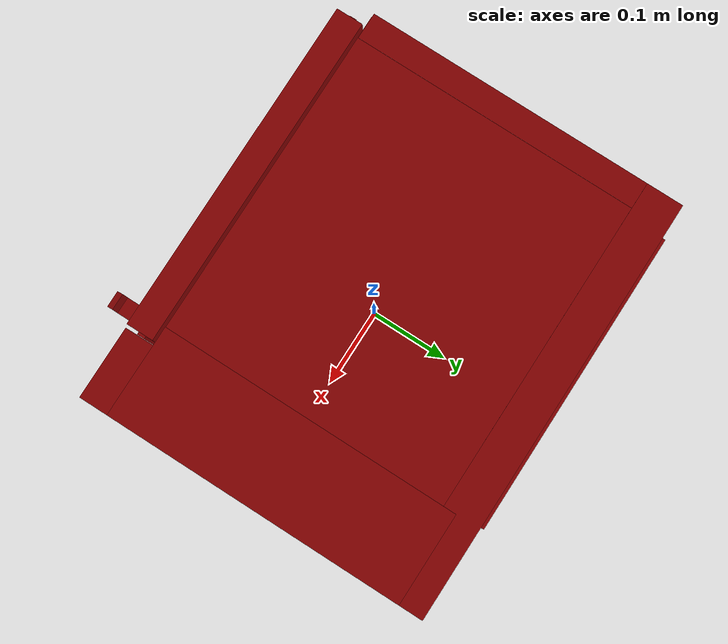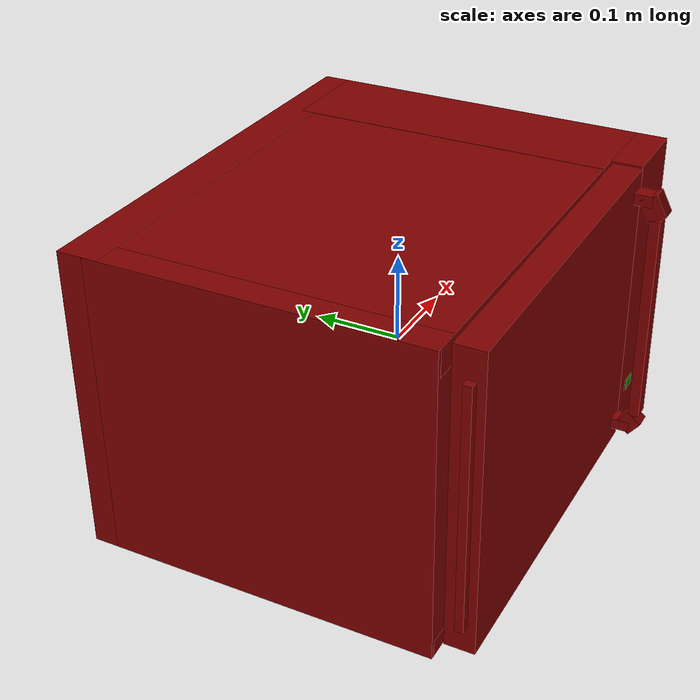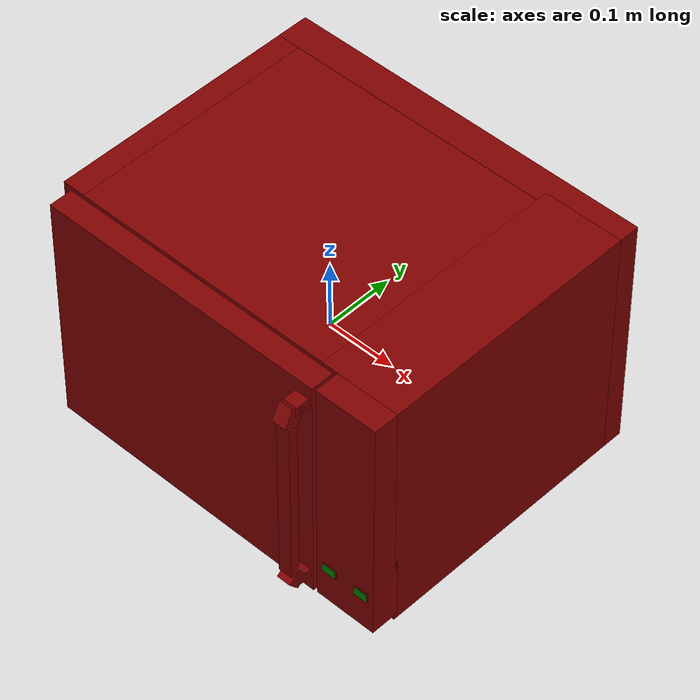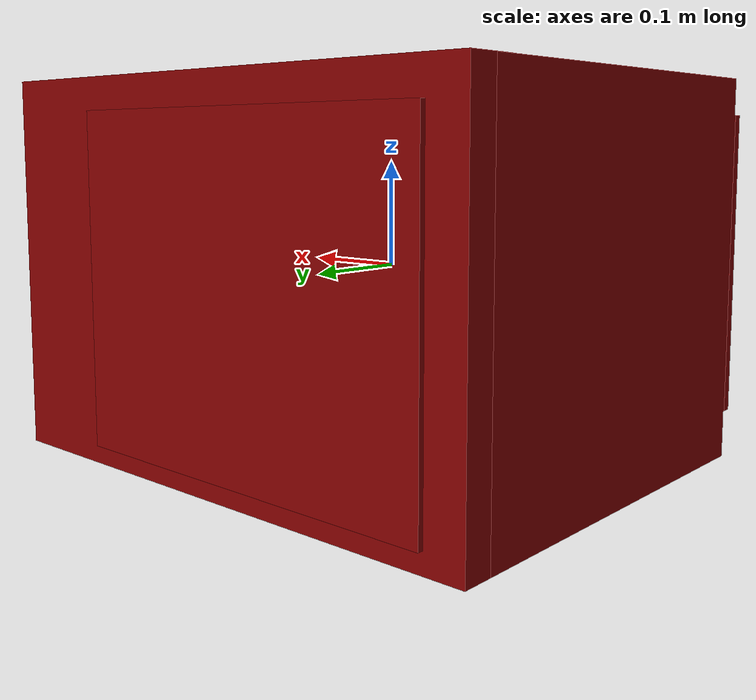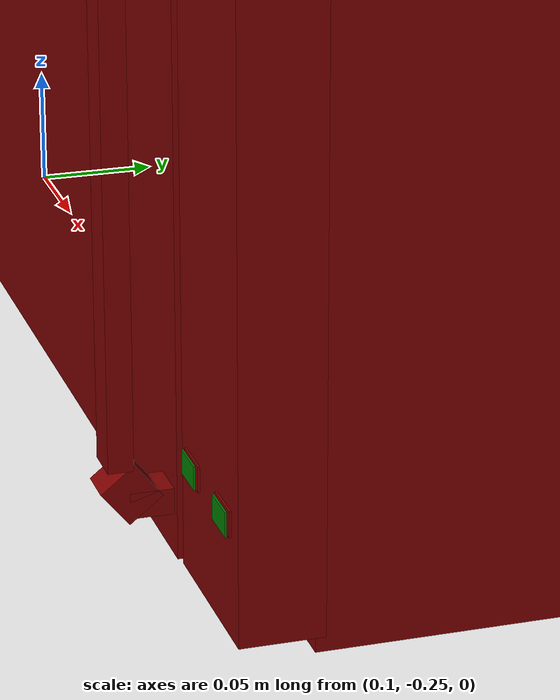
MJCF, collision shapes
<?xml version='1.0' encoding='UTF-8'?>
<mujoco model="model">
  <option timestep="0.002" gravity="0.0 0.0 -9.81"/>
  <compiler angle="radian"/>
  <asset>
    <mesh file="visuals/door.obj" name="door_vis"/>
    <mesh file="visuals/door_Clear.obj" name="door_Clear_vis"/>
    <mesh file="visuals/Body001.obj" name="Body001_vis"/>
    <mesh file="visuals/Button001.obj" name="Button001_vis"/>
    <mesh file="visuals/Button002.obj" name="Button002_vis"/>
    <mesh file="visuals/Disc001.obj" name="Disc001_vis"/>
    <texture file="visuals/T_BC001.png" name="Body001_material" type="2d"/>
    <material name="Body001_material" rgba="1 1 1 1.0" texture="Body001_material" shininess="0.4472135901451111" specular="2"/>
    <texture file="visuals/T_BC001.png" name="door_material" type="2d"/>
    <material name="door_material" rgba="1 1 1 1.0" texture="door_material" shininess="0.4472135901451111" specular="2"/>
    <texture file="visuals/T_BC001.png" name="door_Clear_material" type="2d"/>
    <material name="door_Clear_material" rgba="1 1 1 0.8126302361488342" texture="door_Clear_material" shininess="0.4472135901451111" specular="1"/>
    <texture file="visuals/T_BC001.png" name="Button001_material" type="2d"/>
    <material name="Button001_material" rgba="1 1 1 1.0" texture="Button001_material" shininess="0.4472135901451111" specular="1"/>
    <texture file="visuals/T_BC001.png" name="Button002_material" type="2d"/>
    <material name="Button002_material" rgba="1 1 1 1.0" texture="Button002_material" shininess="0.4472135901451111" specular="1"/>
    <texture file="visuals/T_BC001.png" name="Disc001_material" type="2d"/>
    <material name="Disc001_material" rgba="1 1 1 1.0" texture="Disc001_material" shininess="0.4472135901451111" specular="3"/>
  </asset>
  <default>
    <default class="visual">
      <geom conaffinity="0" contype="0" group="1" type="mesh"/>
    </default>
    <default class="collision">
      <geom group="0" rgba="0.5 0 0 0.5"/>
    </default>
    <default class="spawn">
      <geom group="0" rgba="1 1 1 0.5" contype="0" conaffinity="0"/>
      <site group="0" rgba="1 1 1 0.5"/>
    </default>
    <default class="region">
      <geom group="1" conaffinity="0" contype="0" rgba="0 1 0 0"/>
    </default>
  </default>
  <worldbody>
    <body>
      <body name="object">
        <geom class="collision" type="cylinder" pos="-0.04383198 -0.00372591 -0.14556611" size="0.1438978761434555 0.002949574962258339" quat="1.0 0.0 0.0 0.0" name="tray" rgba="0 1 0 0.5"/>
        <geom class="collision" type="box" pos="0.24830861 -0.20982764 -0.11154913" size="0.009798805229365826 0.00047727569472044706 0.006044457666575909" quat="1.0 0.0 0.0 0.0" name="stop_button" rgba="0.0 0.5 0 0.5"/>
        <geom class="collision" type="box" pos="0.19822404 -0.20982764 -0.11118046" size="0.00956702046096325 0.0004659860278479755 0.005901476833969355" quat="1.0 0.0 0.0 0.0" name="start_button" rgba="0.0 0.5 0 0.5"/>
        <geom mesh="Body001_vis" type="mesh" solimp="0.998 0.998 0.001" solref="0.001 1" friction="0.95 0.3 0.1" class="visual" material="Body001_material"/>
        <geom class="collision" type="box" pos="-0.00000012 0.21015597 0.00000007" size="0.2661704421043396 0.022949034348130226 0.17612995207309723" quat="1.0 0.0 0.0 0.0"/>
        <geom class="collision" type="box" pos="-0.24974364 0.01722560 -0.00008021" size="0.016427617520093918 0.18741029500961304 0.17604970932006836" quat="1.0 0.0 0.0 0.0"/>
        <geom class="collision" type="box" pos="0.20925607 0.01611861 0.00000008" size="0.0569148063659668 0.18709799647331238 0.1761300414800644" quat="1.0 0.0 0.0 0.0"/>
        <geom class="collision" type="box" pos="-0.04821619 0.01667056 0.16136061" size="0.2136847823858261 0.18720322847366333 0.014477603137493134" quat="1.0 0.0 0.0 0.0"/>
        <geom class="collision" type="box" pos="-0.04853371 0.00878647 -0.16661847" size="0.2136848270893097 0.17911659181118011 0.009512022137641907" quat="1.0 0.0 0.0 0.0"/>
        <geom class="collision" type="box" pos="0.22129934 -0.18626226 0.00352386" size="0.04487158730626106 0.02033902332186699 0.1725941002368927" quat="1.0 0.0 0.0 0.0"/>
        <geom class="collision" type="box" pos="-0.04066718 0.23651529 -0.00550890" size="0.1900923103094101 0.0024844584986567497 0.15197011828422546" quat="1.0 0.0 0.0 0.0"/>
        <body name="door">
          <joint axis="0.0 0.0 1.0" pos="-0.24617995 -0.18972696 0.00419239" limited="true" name="microjoint" range="-1.5707963267948966 0.0" type="hinge" damping="1" frictionloss="1" armature=".01" stiffness="0.05"/>
          <geom mesh="door_vis" type="mesh" solimp="0.998 0.998 0.001" solref="0.001 1" friction="0.95 0.3 0.1" class="visual" material="door_material"/>
          <geom class="collision" type="box" pos="-0.03833209 -0.19141800 0.00379769" size="0.21060845255851746 0.01677975244820118 0.17233306169509888" quat="1.0 0.0 0.0 0.0" name="door_main"/>
          <geom class="collision" type="box" pos="-0.04137879 -0.19423909 0.00291795" size="0.21727995574474335 0.004697564989328384 0.1406743824481964" quat="1.0 0.0 0.0 0.0"/>
          <geom class="collision" type="box" pos="0.15759067 -0.23362907 0.00323164" size="0.010132702067494392 0.006171753630042076 0.12612199783325195" quat="1.0 0.0 0.0 0.0" name="door_handle_main"/>
          <geom class="collision" type="box" pos="0.15759067 -0.23014883 0.14315665" size="0.010132716968655586 0.010932638309895992 0.013443855568766594" quat="0.972201943397522 -0.2341439425945282 0.0 0.0"/>
          <geom class="collision" type="box" pos="0.15759067 -0.21729095 0.15051425" size="0.010132716968655586 0.012077653780579567 0.0064354282803833485" quat="1.0 0.0 0.0 0.0"/>
          <geom class="collision" type="box" pos="0.15759067 -0.22842196 -0.13502377" size="0.010132716968655586 0.010438201017677784 0.010855674743652344" quat="0.3333450257778168 -0.9428049325942993 0.0 0.0"/>
          <geom class="collision" type="box" pos="0.15759067 -0.21729095 -0.14069951" size="0.010132716968655586 0.012077653780579567 0.006435431074351072" quat="1.0 0.0 0.0 0.0"/>
          <body name="door_Clear">
            <geom mesh="door_Clear_vis" type="mesh" solimp="0.998 0.998 0.001" solref="0.001 1" friction="0.95 0.3 0.1" class="visual" material="door_Clear_material"/>
            <geom class="collision" type="box" pos="-0.04137879 -0.19423909 0.00291795" size="0.21727995574474335 0.004697564989328384 0.1406743824481964" quat="1.0 0.0 0.0 0.0"/>
          </body>
        </body>
        <body name="Button001">
          <joint axis="0.0 1.0 0.0" pos="0.19839263 -0.20765848 -0.11125848" limited="true" name="Button001_joint" range="0.0 0.002" type="slide" damping="1" frictionloss="1" armature=".01" stiffness="0.05"/>
          <geom mesh="Button001_vis" type="mesh" solimp="0.998 0.998 0.001" solref="0.001 1" friction="0.95 0.3 0.1" class="visual" material="Button001_material"/>
          <geom class="collision" type="box" pos="0.19842073 -0.20818295 -0.11145418" size="0.011044301092624664 0.0005379408248700202 0.0064368159510195255" quat="1.0 0.0 0.0 0.0"/>
        </body>
        <body name="Button002">
          <joint axis="0.0 1.0 0.0" pos="0.24814498 -0.20765848 -0.11100888" limited="true" name="Button002_joint" range="0.0 0.002" type="slide" damping="1" frictionloss="1" armature=".01" stiffness="0.05"/>
          <geom mesh="Button002_vis" type="mesh" solimp="0.998 0.998 0.001" solref="0.001 1" friction="0.95 0.3 0.1" class="visual" material="Button002_material"/>
          <geom class="collision" type="box" pos="0.24815582 -0.20818295 -0.11116721" size="0.011044301092624664 0.0005379408248700202 0.0064368159510195255" quat="1.0 0.0 0.0 0.0"/>
        </body>
        <body name="Disc001">
          <joint axis="0.0 0.0 1.0" pos="-0.04412367 -0.00453850 -0.15142865" limited="false" name="Disc001_joint" range="0 360" type="hinge" damping="1" frictionloss="1" armature=".01" stiffness="0.05"/>
          <geom mesh="Disc001_vis" type="mesh" solimp="0.998 0.998 0.001" solref="0.001 1" friction="0.95 0.3 0.1" class="visual" material="Disc001_material"/>
          <geom class="collision" type="cylinder" pos="-0.04348535 -0.00603807 -0.15277132" size="0.1428135633468628 0.003507166402414441" quat="1.0 0.0 0.0 0.0"/>
        </body>
        <geom class="region" name="reg_int" type="box" pos="-0.040549985 0.021786355000000007 0.0013168999999999959" size="0.19230519499999998 0.162786285 0.14493340999999998"/>
        <geom class="region" name="reg_main" type="box" pos="0.0 0.01582199999999999 0.0" size="0.26717131 0.22417779 0.17713082"/>
      <geom class="region" name="reg_tray" type="cylinder" pos="-0.04383198 -0.00372591 0.0018168874811291674" size="0.1438978761434555 0.1434334225188708"/></body>
    </body>
  </worldbody>
  <actuator>
    <motor name="microjoint_actuator" joint="microjoint" gear="10"/>
    <motor name="Button001_joint_actuator" joint="Button001_joint" gear="0.5"/>
    <motor name="Button002_joint_actuator" joint="Button002_joint" gear="0.5"/>
    <motor name="Disc001_joint_actuator" joint="Disc001_joint" gear="20"/>
  </actuator>
</mujoco>
